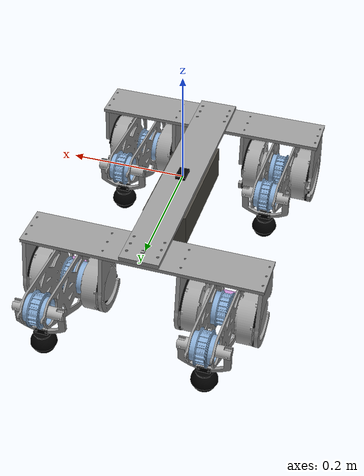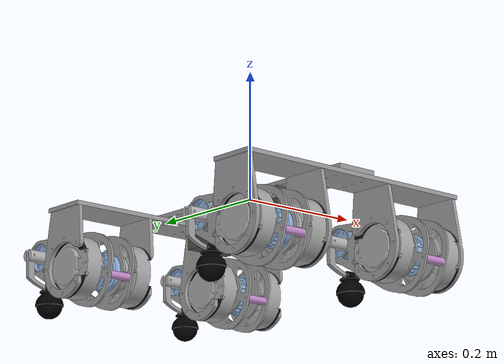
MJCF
<?xml version="1.0" ?>
<!-- Generated using onshape-to-robot -->
<!-- Onshape https://cad.onshape.com/documents/dc683153f135a2acebbf2e79/w/bacb782b4e426fe87a0755e7/e/b7993f2da7e1529e1232288f -->
<mujoco model="robot_dog">
  <compiler angle="radian" meshdir="assets" autolimits="true"/>
  <default>
    <default class="robot_dog">
      <joint frictionloss="0.1" armature="0.005"/>
      <position kp="50" dampratio="1"/>
      <default class="visual">
        <geom type="mesh" contype="0" conaffinity="0" group="2"/>
      </default>
      <default class="collision">
        <geom group="3"/>
      </default>
    </default>
  </default>
  <worldbody>
    <!-- Link torso -->
    <body name="torso" pos="0 0 0" quat="1 0 0 0" childclass="robot_dog">
      <inertial pos="0.000796434 0.000837545 -0.0352509" mass="4.72603" fullinertia="0.114844 0.0486358 0.151226 -5.8226e-08 -1.0884e-08 1.34218e-05"/>
      <!-- Part motor -->
      <geom type="mesh" class="visual" pos="0.0757964 -0.193276 -0.0977405" quat="0.5 -0.5 -0.5 -0.5" mesh="motor" material="motor_material"/>
      <geom type="mesh" class="collision" pos="0.0757964 -0.193276 -0.0977405" quat="0.5 -0.5 -0.5 -0.5" mesh="motor" material="motor_material"/>
      <!-- Part motor_2 -->
      <geom type="mesh" class="visual" pos="-0.0742036 0.19547 -0.0977405" quat="0.5 0.5 -0.5 0.5" mesh="motor" material="motor_material"/>
      <geom type="mesh" class="collision" pos="-0.0742036 0.19547 -0.0977405" quat="0.5 0.5 -0.5 0.5" mesh="motor" material="motor_material"/>
      <!-- Part shoulder -->
      <geom type="mesh" class="visual" pos="0.000796373 -0.192903 -0.0101" quat="1 0 0 0" mesh="shoulder" material="shoulder_material"/>
      <geom type="mesh" class="collision" pos="0.000796373 -0.192903 -0.0101" quat="1 0 0 0" mesh="shoulder" material="shoulder_material"/>
      <!-- Part motor_casing_spacers -->
      <geom type="mesh" class="visual" pos="-0.195154 0.19547 -0.0977405" quat="0.5 -0.5 0.5 -0.5" mesh="motor_casing_spacers" material="motor_casing_spacers_material"/>
      <geom type="mesh" class="collision" pos="-0.195154 0.19547 -0.0977405" quat="0.5 -0.5 0.5 -0.5" mesh="motor_casing_spacers" material="motor_casing_spacers_material"/>
      <!-- Part motor_casing -->
      <geom type="mesh" class="visual" pos="0.0634964 0.19547 -0.0977405" quat="0.5 -0.5 0.5 -0.5" mesh="motor_casing" material="motor_casing_material"/>
      <geom type="mesh" class="collision" pos="0.0634964 0.19547 -0.0977405" quat="0.5 -0.5 0.5 -0.5" mesh="motor_casing" material="motor_casing_material"/>
      <!-- Part motor_casing_2 -->
      <geom type="mesh" class="visual" pos="0.196746 0.19547 -0.0977405" quat="0.5 -0.5 0.5 -0.5" mesh="motor_casing" material="motor_casing_material"/>
      <geom type="mesh" class="collision" pos="0.196746 0.19547 -0.0977405" quat="0.5 -0.5 0.5 -0.5" mesh="motor_casing" material="motor_casing_material"/>
      <!-- Part motor_casing_3 -->
      <geom type="mesh" class="visual" pos="0.0699964 -0.193276 -0.0977405" quat="0.5 -0.5 -0.5 0.5" mesh="motor_casing" material="motor_casing_material"/>
      <geom type="mesh" class="collision" pos="0.0699964 -0.193276 -0.0977405" quat="0.5 -0.5 -0.5 0.5" mesh="motor_casing" material="motor_casing_material"/>
      <!-- Part motor_casing_spacers_2 -->
      <geom type="mesh" class="visual" pos="0.0699964 0.19547 -0.0977405" quat="0.5 0.5 0.5 0.5" mesh="motor_casing_spacers" material="motor_casing_spacers_material"/>
      <geom type="mesh" class="collision" pos="0.0699964 0.19547 -0.0977405" quat="0.5 0.5 0.5 0.5" mesh="motor_casing_spacers" material="motor_casing_spacers_material"/>
      <!-- Part battery -->
      <geom type="mesh" class="visual" pos="0.0385464 0.000597279 -0.03435" quat="0.707107 0 -0.707107 0" mesh="battery" material="battery_material"/>
      <geom type="mesh" class="collision" pos="0.0385464 0.000597279 -0.03435" quat="0.707107 0 -0.707107 0" mesh="battery" material="battery_material"/>
      <!-- Part motor_casing_4 -->
      <geom type="mesh" class="visual" pos="-0.0684036 0.19547 -0.0977405" quat="0.5 -0.5 0.5 -0.5" mesh="motor_casing" material="motor_casing_material"/>
      <geom type="mesh" class="collision" pos="-0.0684036 0.19547 -0.0977405" quat="0.5 -0.5 0.5 -0.5" mesh="motor_casing" material="motor_casing_material"/>
      <!-- Part motor_casing_5 -->
      <geom type="mesh" class="visual" pos="0.203246 -0.193276 -0.0977405" quat="0.5 -0.5 -0.5 0.5" mesh="motor_casing" material="motor_casing_material"/>
      <geom type="mesh" class="collision" pos="0.203246 -0.193276 -0.0977405" quat="0.5 -0.5 -0.5 0.5" mesh="motor_casing" material="motor_casing_material"/>
      <!-- Part motor_casing_spacers_3 -->
      <geom type="mesh" class="visual" pos="0.0699964 0.19547 -0.0977405" quat="0.5 -0.5 0.5 -0.5" mesh="motor_casing_spacers" material="motor_casing_spacers_material"/>
      <geom type="mesh" class="collision" pos="0.0699964 0.19547 -0.0977405" quat="0.5 -0.5 0.5 -0.5" mesh="motor_casing_spacers" material="motor_casing_spacers_material"/>
      <!-- Part torso -->
      <geom type="mesh" class="visual" pos="0.000796373 0.000597279 -0.0036" quat="1 0 0 0" mesh="torso" material="torso_material"/>
      <geom type="mesh" class="collision" pos="0.000796373 0.000597279 -0.0036" quat="1 0 0 0" mesh="torso" material="torso_material"/>
      <!-- Part imu -->
      <geom type="mesh" class="visual" pos="0.000797524 0.000380582 0.0036" quat="1 0 0 0" mesh="imu" material="imu_material"/>
      <geom type="mesh" class="collision" pos="0.000797524 0.000380582 0.0036" quat="1 0 0 0" mesh="imu" material="imu_material"/>
      <!-- Part motor_casing_spacers_4 -->
      <geom type="mesh" class="visual" pos="0.0737964 -0.193276 -0.0977405" quat="0.5 0.5 -0.5 -0.5" mesh="motor_casing_spacers" material="motor_casing_spacers_material"/>
      <geom type="mesh" class="collision" pos="0.0737964 -0.193276 -0.0977405" quat="0.5 0.5 -0.5 -0.5" mesh="motor_casing_spacers" material="motor_casing_spacers_material"/>
      <!-- Part motor_3 -->
      <geom type="mesh" class="visual" pos="-0.189354 -0.193276 -0.0977405" quat="0.5 -0.5 -0.5 -0.5" mesh="motor" material="motor_material"/>
      <geom type="mesh" class="collision" pos="-0.189354 -0.193276 -0.0977405" quat="0.5 -0.5 -0.5 -0.5" mesh="motor" material="motor_material"/>
      <!-- Part motor_casing_6 -->
      <geom type="mesh" class="visual" pos="-0.201654 0.19547 -0.0977405" quat="0.5 -0.5 0.5 -0.5" mesh="motor_casing" material="motor_casing_material"/>
      <geom type="mesh" class="collision" pos="-0.201654 0.19547 -0.0977405" quat="0.5 -0.5 0.5 -0.5" mesh="motor_casing" material="motor_casing_material"/>
      <!-- Part motor_4 -->
      <geom type="mesh" class="visual" pos="-0.0742036 -0.193276 -0.0977405" quat="0.5 -0.5 0.5 0.5" mesh="motor" material="motor_material"/>
      <geom type="mesh" class="collision" pos="-0.0742036 -0.193276 -0.0977405" quat="0.5 -0.5 0.5 0.5" mesh="motor" material="motor_material"/>
      <!-- Part timing_belt_pulley_upper -->
      <geom type="mesh" class="visual" pos="0.135521 -0.193276 -0.0977405" quat="0 -0.707107 -0 -0.707107" mesh="timing_belt_pulley_upper" material="timing_belt_pulley_upper_material"/>
      <geom type="mesh" class="collision" pos="0.135521 -0.193276 -0.0977405" quat="0 -0.707107 -0 -0.707107" mesh="timing_belt_pulley_upper" material="timing_belt_pulley_upper_material"/>
      <!-- Part motor_casing_spacers_5 -->
      <geom type="mesh" class="visual" pos="0.196746 -0.193276 -0.0977405" quat="0.5 0.5 -0.5 -0.5" mesh="motor_casing_spacers" material="motor_casing_spacers_material"/>
      <geom type="mesh" class="collision" pos="0.196746 -0.193276 -0.0977405" quat="0.5 0.5 -0.5 -0.5" mesh="motor_casing_spacers" material="motor_casing_spacers_material"/>
      <!-- Part motor_casing_spacers_6 -->
      <geom type="mesh" class="visual" pos="-0.195154 -0.193276 -0.0977405" quat="0.5 -0.5 0.5 -0.5" mesh="motor_casing_spacers" material="motor_casing_spacers_material"/>
      <geom type="mesh" class="collision" pos="-0.195154 -0.193276 -0.0977405" quat="0.5 -0.5 0.5 -0.5" mesh="motor_casing_spacers" material="motor_casing_spacers_material"/>
      <!-- Part motor_5 -->
      <geom type="mesh" class="visual" pos="-0.189354 0.19547 -0.0977405" quat="0.5 0.5 0.5 -0.5" mesh="motor" material="motor_material"/>
      <geom type="mesh" class="collision" pos="-0.189354 0.19547 -0.0977405" quat="0.5 0.5 0.5 -0.5" mesh="motor" material="motor_material"/>
      <!-- Part motor_casing_7 -->
      <geom type="mesh" class="visual" pos="-0.0619036 -0.193276 -0.0977405" quat="0.5 -0.5 -0.5 0.5" mesh="motor_casing" material="motor_casing_material"/>
      <geom type="mesh" class="collision" pos="-0.0619036 -0.193276 -0.0977405" quat="0.5 -0.5 -0.5 0.5" mesh="motor_casing" material="motor_casing_material"/>
      <!-- Part motor_casing_spacers_7 -->
      <geom type="mesh" class="visual" pos="-0.0722036 0.19547 -0.0977405" quat="0.5 -0.5 0.5 -0.5" mesh="motor_casing_spacers" material="motor_casing_spacers_material"/>
      <geom type="mesh" class="collision" pos="-0.0722036 0.19547 -0.0977405" quat="0.5 -0.5 0.5 -0.5" mesh="motor_casing_spacers" material="motor_casing_spacers_material"/>
      <!-- Part motor_casing_spacers_8 -->
      <geom type="mesh" class="visual" pos="-0.195154 -0.193276 -0.0977405" quat="0.5 0.5 0.5 0.5" mesh="motor_casing_spacers" material="motor_casing_spacers_material"/>
      <geom type="mesh" class="collision" pos="-0.195154 -0.193276 -0.0977405" quat="0.5 0.5 0.5 0.5" mesh="motor_casing_spacers" material="motor_casing_spacers_material"/>
      <!-- Part motor_6 -->
      <geom type="mesh" class="visual" pos="0.190946 -0.193276 -0.0977405" quat="0.5 -0.5 0.5 0.5" mesh="motor" material="motor_material"/>
      <geom type="mesh" class="collision" pos="0.190946 -0.193276 -0.0977405" quat="0.5 -0.5 0.5 0.5" mesh="motor" material="motor_material"/>
      <!-- Part shoulder_2 -->
      <geom type="mesh" class="visual" pos="0.000796373 0.195097 -0.0101" quat="1 0 0 0" mesh="shoulder" material="shoulder_material"/>
      <geom type="mesh" class="collision" pos="0.000796373 0.195097 -0.0101" quat="1 0 0 0" mesh="shoulder" material="shoulder_material"/>
      <!-- Part timing_belt_pulley_upper_2 -->
      <geom type="mesh" class="visual" pos="-0.133929 -0.193276 -0.0977405" quat="0 -0.707107 0 0.707107" mesh="timing_belt_pulley_upper" material="timing_belt_pulley_upper_material"/>
      <geom type="mesh" class="collision" pos="-0.133929 -0.193276 -0.0977405" quat="0 -0.707107 0 0.707107" mesh="timing_belt_pulley_upper" material="timing_belt_pulley_upper_material"/>
      <!-- Part motor_casing_spacers_9 -->
      <geom type="mesh" class="visual" pos="0.196746 0.19547 -0.0977405" quat="0.5 -0.5 -0.5 0.5" mesh="motor_casing_spacers" material="motor_casing_spacers_material"/>
      <geom type="mesh" class="collision" pos="0.196746 0.19547 -0.0977405" quat="0.5 -0.5 -0.5 0.5" mesh="motor_casing_spacers" material="motor_casing_spacers_material"/>
      <!-- Part motor_casing_spacers_10 -->
      <geom type="mesh" class="visual" pos="0.196746 0.19547 -0.0977405" quat="0.5 0.5 -0.5 -0.5" mesh="motor_casing_spacers" material="motor_casing_spacers_material"/>
      <geom type="mesh" class="collision" pos="0.196746 0.19547 -0.0977405" quat="0.5 0.5 -0.5 -0.5" mesh="motor_casing_spacers" material="motor_casing_spacers_material"/>
      <!-- Part motor_7 -->
      <geom type="mesh" class="visual" pos="0.0757964 0.19547 -0.0977405" quat="0.5 0.5 0.5 -0.5" mesh="motor" material="motor_material"/>
      <geom type="mesh" class="collision" pos="0.0757964 0.19547 -0.0977405" quat="0.5 0.5 0.5 -0.5" mesh="motor" material="motor_material"/>
      <!-- Part motor_casing_spacers_11 -->
      <geom type="mesh" class="visual" pos="0.196746 -0.193276 -0.0977405" quat="0.5 -0.5 -0.5 0.5" mesh="motor_casing_spacers" material="motor_casing_spacers_material"/>
      <geom type="mesh" class="collision" pos="0.196746 -0.193276 -0.0977405" quat="0.5 -0.5 -0.5 0.5" mesh="motor_casing_spacers" material="motor_casing_spacers_material"/>
      <!-- Part motor_casing_8 -->
      <geom type="mesh" class="visual" pos="-0.195154 -0.193276 -0.0977405" quat="0.5 -0.5 -0.5 0.5" mesh="motor_casing" material="motor_casing_material"/>
      <geom type="mesh" class="collision" pos="-0.195154 -0.193276 -0.0977405" quat="0.5 -0.5 -0.5 0.5" mesh="motor_casing" material="motor_casing_material"/>
      <!-- Part motor_casing_spacers_12 -->
      <geom type="mesh" class="visual" pos="0.0737964 -0.193276 -0.0977405" quat="0.5 -0.5 -0.5 0.5" mesh="motor_casing_spacers" material="motor_casing_spacers_material"/>
      <geom type="mesh" class="collision" pos="0.0737964 -0.193276 -0.0977405" quat="0.5 -0.5 -0.5 0.5" mesh="motor_casing_spacers" material="motor_casing_spacers_material"/>
      <!-- Part motor_8 -->
      <geom type="mesh" class="visual" pos="0.190946 0.19547 -0.0977405" quat="0.5 0.5 -0.5 0.5" mesh="motor" material="motor_material"/>
      <geom type="mesh" class="collision" pos="0.190946 0.19547 -0.0977405" quat="0.5 0.5 -0.5 0.5" mesh="motor" material="motor_material"/>
      <!-- Part timing_belt_pulley_upper_3 -->
      <geom type="mesh" class="visual" pos="-0.133929 0.19547 -0.0977405" quat="0.707107 0 -0.707107 0" mesh="timing_belt_pulley_upper" material="timing_belt_pulley_upper_material"/>
      <geom type="mesh" class="collision" pos="-0.133929 0.19547 -0.0977405" quat="0.707107 0 -0.707107 0" mesh="timing_belt_pulley_upper" material="timing_belt_pulley_upper_material"/>
      <!-- Part timing_belt_pulley_upper_4 -->
      <geom type="mesh" class="visual" pos="0.135521 0.19547 -0.0977405" quat="0.707107 0 0.707107 -0" mesh="timing_belt_pulley_upper" material="timing_belt_pulley_upper_material"/>
      <geom type="mesh" class="collision" pos="0.135521 0.19547 -0.0977405" quat="0.707107 0 0.707107 -0" mesh="timing_belt_pulley_upper" material="timing_belt_pulley_upper_material"/>
      <!-- Part motor_casing_spacers_13 -->
      <geom type="mesh" class="visual" pos="-0.0684036 -0.193276 -0.0977405" quat="0.5 0.5 -0.5 -0.5" mesh="motor_casing_spacers" material="motor_casing_spacers_material"/>
      <geom type="mesh" class="collision" pos="-0.0684036 -0.193276 -0.0977405" quat="0.5 0.5 -0.5 -0.5" mesh="motor_casing_spacers" material="motor_casing_spacers_material"/>
      <!-- Part motor_casing_spacers_14 -->
      <geom type="mesh" class="visual" pos="-0.0684036 -0.193276 -0.0977405" quat="0.5 -0.5 -0.5 0.5" mesh="motor_casing_spacers" material="motor_casing_spacers_material"/>
      <geom type="mesh" class="collision" pos="-0.0684036 -0.193276 -0.0977405" quat="0.5 -0.5 -0.5 0.5" mesh="motor_casing_spacers" material="motor_casing_spacers_material"/>
      <!-- Part motor_casing_spacers_15 -->
      <geom type="mesh" class="visual" pos="-0.195154 0.19547 -0.0977405" quat="0.5 0.5 0.5 0.5" mesh="motor_casing_spacers" material="motor_casing_spacers_material"/>
      <geom type="mesh" class="collision" pos="-0.195154 0.19547 -0.0977405" quat="0.5 0.5 0.5 0.5" mesh="motor_casing_spacers" material="motor_casing_spacers_material"/>
      <!-- Part motor_casing_spacers_16 -->
      <geom type="mesh" class="visual" pos="-0.0722036 0.19547 -0.0977405" quat="0.5 0.5 0.5 0.5" mesh="motor_casing_spacers" material="motor_casing_spacers_material"/>
      <geom type="mesh" class="collision" pos="-0.0722036 0.19547 -0.0977405" quat="0.5 0.5 0.5 0.5" mesh="motor_casing_spacers" material="motor_casing_spacers_material"/>
    </body>
    <!-- Link thigh_connecor_full -->
    <body name="thigh_connecor_full" pos="0 0 0" quat="1 0 0 0" childclass="robot_dog">
      <freejoint name="thigh_connecor_full_freejoint"/>
      <inertial pos="0.139779 0.226341 -0.0868919" mass="0.227462" fullinertia="0.000836589 0.000312689 0.000701374 1.6239e-05 4.92636e-06 -0.000130774"/>
      <!-- Part spacer_between_thigh_connector -->
      <geom type="mesh" class="visual" pos="0.119246 0.14465 -0.111838" quat="0.104367 -0.699362 0.104367 -0.699362" mesh="spacer_between_thigh_connector" material="spacer_between_thigh_connector_material"/>
      <geom type="mesh" class="collision" pos="0.119246 0.14465 -0.111838" quat="0.104367 -0.699362 0.104367 -0.699362" mesh="spacer_between_thigh_connector" material="spacer_between_thigh_connector_material"/>
      <!-- Part thigh_connecor_full -->
      <geom type="mesh" class="visual" pos="0.159246 0.194106 -0.100872" quat="0.568323 -0.420725 -0.568323 0.420725" mesh="thigh_connecor_full" material="thigh_connecor_full_material"/>
      <geom type="mesh" class="collision" pos="0.159246 0.194106 -0.100872" quat="0.568323 -0.420725 -0.568323 0.420725" mesh="thigh_connecor_full" material="thigh_connecor_full_material"/>
      <!-- Part thigh_connector_hollow -->
      <geom type="mesh" class="visual" pos="0.119246 0.194106 -0.100872" quat="0.568323 -0.420725 -0.568323 0.420725" mesh="thigh_connector_hollow" material="thigh_connector_hollow_material"/>
      <geom type="mesh" class="collision" pos="0.119246 0.194106 -0.100872" quat="0.568323 -0.420725 -0.568323 0.420725" mesh="thigh_connector_hollow" material="thigh_connector_hollow_material"/>
    </body>
    <!-- Link timing_belt_pulley_lower_shaft -->
    <body name="timing_belt_pulley_lower_shaft" pos="0 0 0" quat="1 0 0 0" childclass="robot_dog">
      <freejoint name="timing_belt_pulley_lower_shaft_freejoint"/>
      <inertial pos="0.136966 0.320757 -0.0800069" mass="0.183568" fullinertia="0.000212464 0.000261537 8.22203e-05 -1.1031e-08 -4.00347e-07 -4.95024e-06"/>
      <!-- Part timing_belt_pulley_lower_shaft -->
      <geom type="mesh" class="visual" pos="0.136996 0.321349 -0.0585461" quat="0.0137888 0.999905 0 0" mesh="timing_belt_pulley_lower_shaft" material="timing_belt_pulley_lower_shaft_material"/>
      <geom type="mesh" class="collision" pos="0.136996 0.321349 -0.0585461" quat="0.0137888 0.999905 0 0" mesh="timing_belt_pulley_lower_shaft" material="timing_belt_pulley_lower_shaft_material"/>
      <!-- Part timing_belt_pulley_lower -->
      <geom type="mesh" class="visual" pos="0.137496 0.321349 -0.0585461" quat="0.493058 -0.506847 0.493058 -0.506847" mesh="timing_belt_pulley_lower" material="timing_belt_pulley_lower_material"/>
      <geom type="mesh" class="collision" pos="0.137496 0.321349 -0.0585461" quat="0.493058 -0.506847 0.493058 -0.506847" mesh="timing_belt_pulley_lower" material="timing_belt_pulley_lower_material"/>
      <!-- Part feet_connector -->
      <geom type="mesh" class="visual" pos="0.136842 0.319272 -0.133812" quat="0.999905 -0.0137888 -0 0" mesh="feet_connector" material="feet_connector_material"/>
      <geom type="mesh" class="collision" pos="0.136842 0.319272 -0.133812" quat="0.999905 -0.0137888 -0 0" mesh="feet_connector" material="feet_connector_material"/>
      <!-- Part ball_for_feet -->
      <geom type="mesh" class="visual" pos="0.136842 0.318721 -0.153804" quat="0.999905 -0.0137888 -0 0" mesh="ball_for_feet" material="ball_for_feet_material"/>
      <geom type="mesh" class="collision" pos="0.136842 0.318721 -0.153804" quat="0.999905 -0.0137888 -0 0" mesh="ball_for_feet" material="ball_for_feet_material"/>
      <!-- Part lower_shaft_connector_to_feet -->
      <geom type="mesh" class="visual" pos="0.136996 0.317035 -0.0934404" quat="0.697289 -0.71679 -0 0" mesh="lower_shaft_connector_to_feet" material="lower_shaft_connector_to_feet_material"/>
      <geom type="mesh" class="collision" pos="0.136996 0.317035 -0.0934404" quat="0.697289 -0.71679 -0 0" mesh="lower_shaft_connector_to_feet" material="lower_shaft_connector_to_feet_material"/>
    </body>
    <!-- Link thigh_connecor_full_2 -->
    <body name="thigh_connecor_full_2" pos="0 0 0" quat="1 0 0 0" childclass="robot_dog">
      <freejoint name="thigh_connecor_full_2_freejoint"/>
      <inertial pos="-0.137986 0.226311 -0.0868055" mass="0.227462" fullinertia="0.000836589 0.000313424 0.000700638 -1.62315e-05 -4.97319e-06 -0.000131861"/>
      <!-- Part thigh_connector_hollow_2 -->
      <geom type="mesh" class="visual" pos="-0.113954 0.194114 -0.100876" quat="0.568911 -0.419928 -0.568911 0.419928" mesh="thigh_connector_hollow" material="thigh_connector_hollow_material"/>
      <geom type="mesh" class="collision" pos="-0.113954 0.194114 -0.100876" quat="0.568911 -0.419928 -0.568911 0.419928" mesh="thigh_connector_hollow" material="thigh_connector_hollow_material"/>
      <!-- Part spacer_between_thigh_connector_2 -->
      <geom type="mesh" class="visual" pos="-0.153954 0.144689 -0.11198" quat="0.105347 -0.699215 0.105347 -0.699215" mesh="spacer_between_thigh_connector" material="spacer_between_thigh_connector_material"/>
      <geom type="mesh" class="collision" pos="-0.153954 0.144689 -0.11198" quat="0.105347 -0.699215 0.105347 -0.699215" mesh="spacer_between_thigh_connector" material="spacer_between_thigh_connector_material"/>
      <!-- Part thigh_connecor_full_2 -->
      <geom type="mesh" class="visual" pos="-0.153954 0.194114 -0.100876" quat="0.568911 -0.419928 -0.568911 0.419928" mesh="thigh_connecor_full" material="thigh_connecor_full_material"/>
      <geom type="mesh" class="collision" pos="-0.153954 0.194114 -0.100876" quat="0.568911 -0.419928 -0.568911 0.419928" mesh="thigh_connecor_full" material="thigh_connecor_full_material"/>
    </body>
    <!-- Link timing_belt_pulley_lower_shaft_2 -->
    <body name="timing_belt_pulley_lower_shaft_2" pos="0 0 0" quat="1 0 0 0" childclass="robot_dog">
      <freejoint name="timing_belt_pulley_lower_shaft_2_freejoint"/>
      <inertial pos="-0.136234 0.320415 -0.0784734" mass="0.183568" fullinertia="0.000212464 0.000261592 8.21655e-05 -8.531e-09 -4.00408e-07 -3.83038e-06"/>
      <!-- Part timing_belt_pulley_lower_shaft_2 -->
      <geom type="mesh" class="visual" pos="-0.136204 0.320873 -0.0570093" quat="0.0106675 0.999943 -0 0" mesh="timing_belt_pulley_lower_shaft" material="timing_belt_pulley_lower_shaft_material"/>
      <geom type="mesh" class="collision" pos="-0.136204 0.320873 -0.0570093" quat="0.0106675 0.999943 -0 0" mesh="timing_belt_pulley_lower_shaft" material="timing_belt_pulley_lower_shaft_material"/>
      <!-- Part lower_shaft_connector_to_feet_2 -->
      <geom type="mesh" class="visual" pos="-0.136204 0.316777 -0.0919298" quat="0.699523 -0.71461 0 -0" mesh="lower_shaft_connector_to_feet" material="lower_shaft_connector_to_feet_material"/>
      <geom type="mesh" class="collision" pos="-0.136204 0.316777 -0.0919298" quat="0.699523 -0.71461 0 -0" mesh="lower_shaft_connector_to_feet" material="lower_shaft_connector_to_feet_material"/>
      <!-- Part timing_belt_pulley_lower_2 -->
      <geom type="mesh" class="visual" pos="-0.135704 0.320873 -0.0570093" quat="0.494638 -0.505305 0.494638 -0.505305" mesh="timing_belt_pulley_lower" material="timing_belt_pulley_lower_material"/>
      <geom type="mesh" class="collision" pos="-0.135704 0.320873 -0.0570093" quat="0.494638 -0.505305 0.494638 -0.505305" mesh="timing_belt_pulley_lower" material="timing_belt_pulley_lower_material"/>
      <!-- Part ball_for_feet_2 -->
      <geom type="mesh" class="visual" pos="-0.136358 0.31884 -0.152282" quat="0.999943 -0.0106675 -0 -0" mesh="ball_for_feet" material="ball_for_feet_material"/>
      <geom type="mesh" class="collision" pos="-0.136358 0.31884 -0.152282" quat="0.999943 -0.0106675 -0 -0" mesh="ball_for_feet" material="ball_for_feet_material"/>
      <!-- Part feet_connector_2 -->
      <geom type="mesh" class="visual" pos="-0.136358 0.319267 -0.132286" quat="0.999943 -0.0106675 -0 -0" mesh="feet_connector" material="feet_connector_material"/>
      <geom type="mesh" class="collision" pos="-0.136358 0.319267 -0.132286" quat="0.999943 -0.0106675 -0 -0" mesh="feet_connector" material="feet_connector_material"/>
    </body>
    <!-- Link spacer_between_thigh_connector -->
    <body name="spacer_between_thigh_connector" pos="0 0 0" quat="1 0 0 0" childclass="robot_dog">
      <freejoint name="spacer_between_thigh_connector_freejoint"/>
      <inertial pos="0.139579 -0.161567 -0.0896616" mass="0.227462" fullinertia="0.000836589 0.000311417 0.000702645 1.62532e-05 4.90159e-06 -0.000128864"/>
      <!-- Part thigh_connector_hollow_3 -->
      <geom type="mesh" class="visual" pos="0.115546 -0.196147 -0.0958904" quat="0.422185 0.567239 0.422185 0.567239" mesh="thigh_connector_hollow" material="thigh_connector_hollow_material"/>
      <geom type="mesh" class="collision" pos="0.115546 -0.196147 -0.0958904" quat="0.422185 0.567239 0.422185 0.567239" mesh="thigh_connector_hollow" material="thigh_connector_hollow_material"/>
      <!-- Part thigh_connecor_full_3 -->
      <geom type="mesh" class="visual" pos="0.155546 -0.196147 -0.0958904" quat="0.422185 0.567239 0.422185 0.567239" mesh="thigh_connecor_full" material="thigh_connecor_full_material"/>
      <geom type="mesh" class="collision" pos="0.155546 -0.196147 -0.0958904" quat="0.422185 0.567239 0.422185 0.567239" mesh="thigh_connecor_full" material="thigh_connecor_full_material"/>
      <!-- Part spacer_between_thigh_connector_3 -->
      <geom type="mesh" class="visual" pos="0.155546 -0.243391 -0.114171" quat="0.102568 -0.699628 -0.102568 0.699628" mesh="spacer_between_thigh_connector" material="spacer_between_thigh_connector_material"/>
      <geom type="mesh" class="collision" pos="0.155546 -0.243391 -0.114171" quat="0.102568 -0.699628 -0.102568 0.699628" mesh="spacer_between_thigh_connector" material="spacer_between_thigh_connector_material"/>
    </body>
    <!-- Link timing_belt_pulley_lower_shaft_3 -->
    <body name="timing_belt_pulley_lower_shaft_3" pos="0 0 0" quat="1 0 0 0" childclass="robot_dog">
      <freejoint name="timing_belt_pulley_lower_shaft_3_freejoint"/>
      <inertial pos="0.137827 -0.0674443 -0.0832341" mass="0.183568" fullinertia="0.000212464 0.000261265 8.24926e-05 1.9122e-08 4.00042e-07 -8.55913e-06"/>
      <!-- Part feet_connector_3 -->
      <geom type="mesh" class="visual" pos="0.137951 -0.0700125 -0.136998" quat="0 0 0.0238634 0.999715" mesh="feet_connector" material="feet_connector_material"/>
      <geom type="mesh" class="collision" pos="0.137951 -0.0700125 -0.136998" quat="0 0 0.0238634 0.999715" mesh="feet_connector" material="feet_connector_material"/>
      <!-- Part lower_shaft_connector_to_feet_3 -->
      <geom type="mesh" class="visual" pos="0.137796 -0.0647437 -0.0969096" quat="0 -0 -0.690031 0.723779" mesh="lower_shaft_connector_to_feet" material="lower_shaft_connector_to_feet_material"/>
      <geom type="mesh" class="collision" pos="0.137796 -0.0647437 -0.0969096" quat="0 -0 -0.690031 0.723779" mesh="lower_shaft_connector_to_feet" material="lower_shaft_connector_to_feet_material"/>
      <!-- Part ball_for_feet_3 -->
      <geom type="mesh" class="visual" pos="0.137951 -0.0709667 -0.156975" quat="0 0 0.0238634 0.999715" mesh="ball_for_feet" material="ball_for_feet_material"/>
      <geom type="mesh" class="collision" pos="0.137951 -0.0709667 -0.156975" quat="0 0 0.0238634 0.999715" mesh="ball_for_feet" material="ball_for_feet_material"/>
      <!-- Part timing_belt_pulley_lower_shaft_3 -->
      <geom type="mesh" class="visual" pos="0.137796 -0.0664199 -0.0617896" quat="0 -0 -0.999715 0.0238634" mesh="timing_belt_pulley_lower_shaft" material="timing_belt_pulley_lower_shaft_material"/>
      <geom type="mesh" class="collision" pos="0.137796 -0.0664199 -0.0617896" quat="0 -0 -0.999715 0.0238634" mesh="timing_belt_pulley_lower_shaft" material="timing_belt_pulley_lower_shaft_material"/>
      <!-- Part timing_belt_pulley_lower_3 -->
      <geom type="mesh" class="visual" pos="0.137296 -0.0664199 -0.0617896" quat="0.487926 -0.511789 -0.487926 0.511789" mesh="timing_belt_pulley_lower" material="timing_belt_pulley_lower_material"/>
      <geom type="mesh" class="collision" pos="0.137296 -0.0664199 -0.0617896" quat="0.487926 -0.511789 -0.487926 0.511789" mesh="timing_belt_pulley_lower" material="timing_belt_pulley_lower_material"/>
    </body>
    <!-- Link spacer_between_thigh_connector_2 -->
    <body name="spacer_between_thigh_connector_2" pos="0 0 0" quat="1 0 0 0" childclass="robot_dog">
      <freejoint name="spacer_between_thigh_connector_2_freejoint"/>
      <inertial pos="-0.138186 -0.161554 -0.0897149" mass="0.227462" fullinertia="0.000836589 0.000310986 0.000703077 -1.62554e-05 -4.8719e-06 -0.000128206"/>
      <!-- Part thigh_connector_hollow_4 -->
      <geom type="mesh" class="visual" pos="-0.117654 -0.196144 -0.0958856" quat="0.422662 0.566884 0.422662 0.566884" mesh="thigh_connector_hollow" material="thigh_connector_hollow_material"/>
      <geom type="mesh" class="collision" pos="-0.117654 -0.196144 -0.0958856" quat="0.422662 0.566884 0.422662 0.566884" mesh="thigh_connector_hollow" material="thigh_connector_hollow_material"/>
      <!-- Part spacer_between_thigh_connector_4 -->
      <geom type="mesh" class="visual" pos="-0.117654 -0.243418 -0.114087" quat="0.10198 -0.699714 -0.10198 0.699714" mesh="spacer_between_thigh_connector" material="spacer_between_thigh_connector_material"/>
      <geom type="mesh" class="collision" pos="-0.117654 -0.243418 -0.114087" quat="0.10198 -0.699714 -0.10198 0.699714" mesh="spacer_between_thigh_connector" material="spacer_between_thigh_connector_material"/>
      <!-- Part thigh_connecor_full_4 -->
      <geom type="mesh" class="visual" pos="-0.157654 -0.196144 -0.0958856" quat="0.422662 0.566884 0.422662 0.566884" mesh="thigh_connecor_full" material="thigh_connecor_full_material"/>
      <geom type="mesh" class="collision" pos="-0.157654 -0.196144 -0.0958856" quat="0.422662 0.566884 0.422662 0.566884" mesh="thigh_connecor_full" material="thigh_connecor_full_material"/>
    </body>
    <!-- Link timing_belt_pulley_lower_shaft_4 -->
    <body name="timing_belt_pulley_lower_shaft_4" pos="0 0 0" quat="1 0 0 0" childclass="robot_dog">
      <freejoint name="timing_belt_pulley_lower_shaft_4_freejoint"/>
      <inertial pos="-0.135373 -0.0676012 -0.0822655" mass="0.183568" fullinertia="0.000212464 0.000261367 8.23908e-05 1.6573e-08 4.00156e-07 -7.41947e-06"/>
      <!-- Part lower_shaft_connector_to_feet_4 -->
      <geom type="mesh" class="visual" pos="-0.135404 -0.0648135 -0.0959234" quat="0 -0 0.692334 -0.721578" mesh="lower_shaft_connector_to_feet" material="lower_shaft_connector_to_feet_material"/>
      <geom type="mesh" class="collision" pos="-0.135404 -0.0648135 -0.0959234" quat="0 -0 0.692334 -0.721578" mesh="lower_shaft_connector_to_feet" material="lower_shaft_connector_to_feet_material"/>
      <!-- Part timing_belt_pulley_lower_shaft_4 -->
      <geom type="mesh" class="visual" pos="-0.135404 -0.0667135 -0.0608149" quat="0 0 -0.999786 0.0206786" mesh="timing_belt_pulley_lower_shaft" material="timing_belt_pulley_lower_shaft_material"/>
      <geom type="mesh" class="collision" pos="-0.135404 -0.0667135 -0.0608149" quat="0 0 -0.999786 0.0206786" mesh="timing_belt_pulley_lower_shaft" material="timing_belt_pulley_lower_shaft_material"/>
      <!-- Part ball_for_feet_4 -->
      <geom type="mesh" class="visual" pos="-0.135249 -0.0706537 -0.156028" quat="0 -0 -0.0206786 -0.999786" mesh="ball_for_feet" material="ball_for_feet_material"/>
      <geom type="mesh" class="collision" pos="-0.135249 -0.0706537 -0.156028" quat="0 -0 -0.0206786 -0.999786" mesh="ball_for_feet" material="ball_for_feet_material"/>
      <!-- Part feet_connector_4 -->
      <geom type="mesh" class="visual" pos="-0.135249 -0.0698268 -0.136045" quat="0 -0 -0.0206786 -0.999786" mesh="feet_connector" material="feet_connector_material"/>
      <geom type="mesh" class="collision" pos="-0.135249 -0.0698268 -0.136045" quat="0 -0 -0.0206786 -0.999786" mesh="feet_connector" material="feet_connector_material"/>
      <!-- Part timing_belt_pulley_lower_4 -->
      <geom type="mesh" class="visual" pos="-0.135904 -0.0667135 -0.0608149" quat="0.489554 -0.510232 -0.489554 0.510232" mesh="timing_belt_pulley_lower" material="timing_belt_pulley_lower_material"/>
      <geom type="mesh" class="collision" pos="-0.135904 -0.0667135 -0.0608149" quat="0.489554 -0.510232 -0.489554 0.510232" mesh="timing_belt_pulley_lower" material="timing_belt_pulley_lower_material"/>
    </body>
  </worldbody>
  <asset>
    <mesh file="timing_belt_pulley_lower_shaft.stl"/>
    <mesh file="motor_casing.stl"/>
    <mesh file="thigh_connector_hollow.stl"/>
    <mesh file="lower_shaft_connector_to_feet.stl"/>
    <mesh file="ball_for_feet.stl"/>
    <mesh file="imu.stl"/>
    <mesh file="battery.stl"/>
    <mesh file="feet_connector.stl"/>
    <mesh file="thigh_connecor_full.stl"/>
    <mesh file="motor_casing_spacers.stl"/>
    <mesh file="spacer_between_thigh_connector.stl"/>
    <mesh file="timing_belt_pulley_lower.stl"/>
    <mesh file="shoulder.stl"/>
    <mesh file="timing_belt_pulley_upper.stl"/>
    <mesh file="motor.stl"/>
    <mesh file="torso.stl"/>
    <material name="motor_material" rgba="0.647059 0.647059 0.647059 1"/>
    <material name="shoulder_material" rgba="0.6 0.6 0.6 1"/>
    <material name="motor_casing_spacers_material" rgba="0 0 0 1"/>
    <material name="motor_casing_material" rgba="0.6 0.6 0.6 1"/>
    <material name="battery_material" rgba="0.301961 0.290196 0.262745 1"/>
    <material name="torso_material" rgba="0.6 0.6 0.6 1"/>
    <material name="imu_material" rgba="0 0 0 1"/>
    <material name="timing_belt_pulley_upper_material" rgba="0.541176 0.682353 0.839216 1"/>
    <material name="spacer_between_thigh_connector_material" rgba="0.764706 0.545098 0.803922 1"/>
    <material name="thigh_connecor_full_material" rgba="0.6 0.6 0.6 1"/>
    <material name="thigh_connector_hollow_material" rgba="0.6 0.6 0.6 1"/>
    <material name="timing_belt_pulley_lower_shaft_material" rgba="0.701961 0.701961 0.701961 1"/>
    <material name="timing_belt_pulley_lower_material" rgba="0.541176 0.682353 0.839216 1"/>
    <material name="feet_connector_material" rgba="0 0 0 1"/>
    <material name="ball_for_feet_material" rgba="0 0 0 1"/>
    <material name="lower_shaft_connector_to_feet_material" rgba="0.6 0.6 0.6 1"/>
  </asset>
  <actuator/>
  <equality/>
</mujoco>
